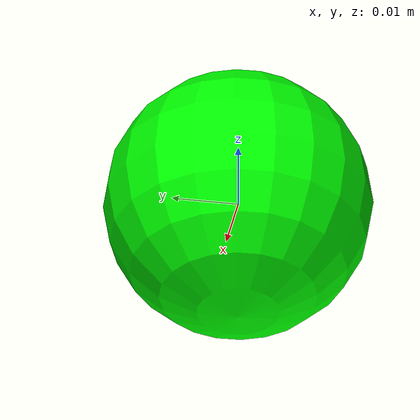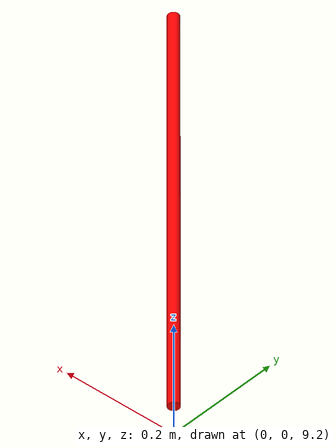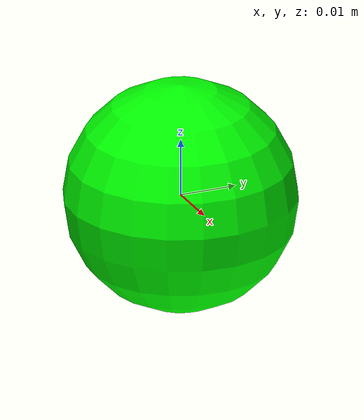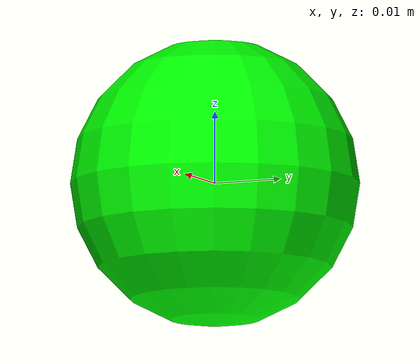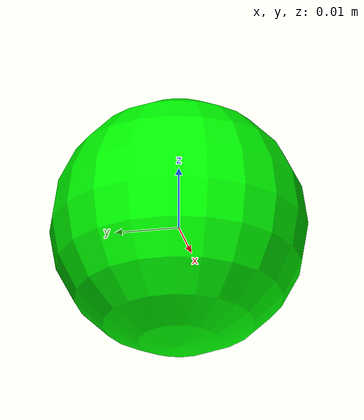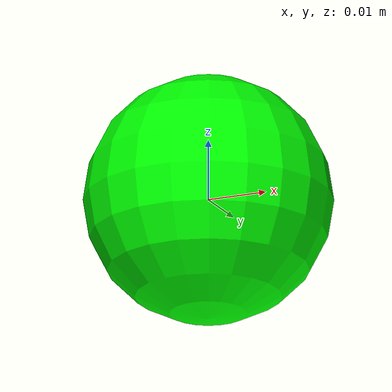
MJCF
<mujoco>
<worldbody>
    <light name="top" pos="10 10 10"/>
    <body name="pendulum" euler="0 0 -30">
        <joint name="swing" type="hinge" axis="1 -1 0" pos="0 0 10"/>
        <geom name="arm" type="cylinder" size="0.01 0.375" rgba="1 0 0 1" pos="0 0 9.625" mass = "0.1"/> <!-- adjust position and length of cylinder -->
        <body name="sphere_holder" pos="0 0 0">  <!-- adjust Position of the sphere_holder body (centerpoint of sphere) -->
            <joint name="human_slider" type="slide" axis="0 0 1" range="-0.25 0.25"/>
            <geom name="sphere" type="sphere" size="0.02" rgba="0 1 0 1" pos="0 0 0" mass = "1"/>  <!-- adjust sphere mass -->
    </body>
    </body>
    <camera name="front" pos="0 -3 9.5" xyaxes="1 0 0 0 0 1" />
</worldbody>

<actuator>
    <motor name="my_motor" joint="human_slider" ctrlrange = "-20 20"/>
</actuator>

</mujoco>
